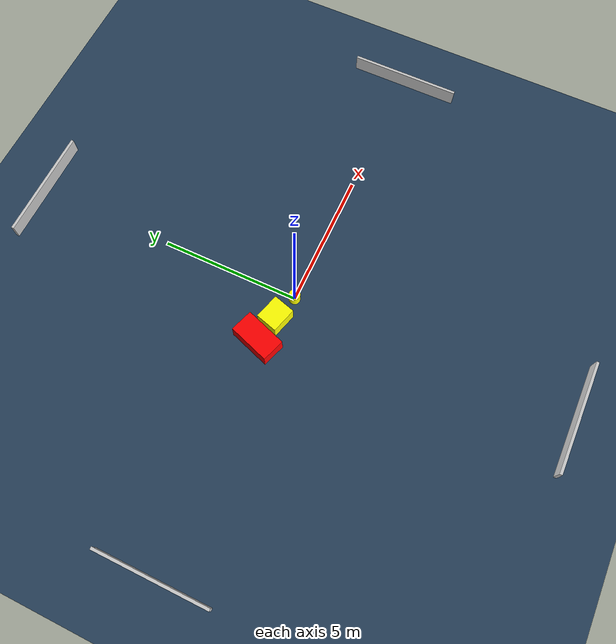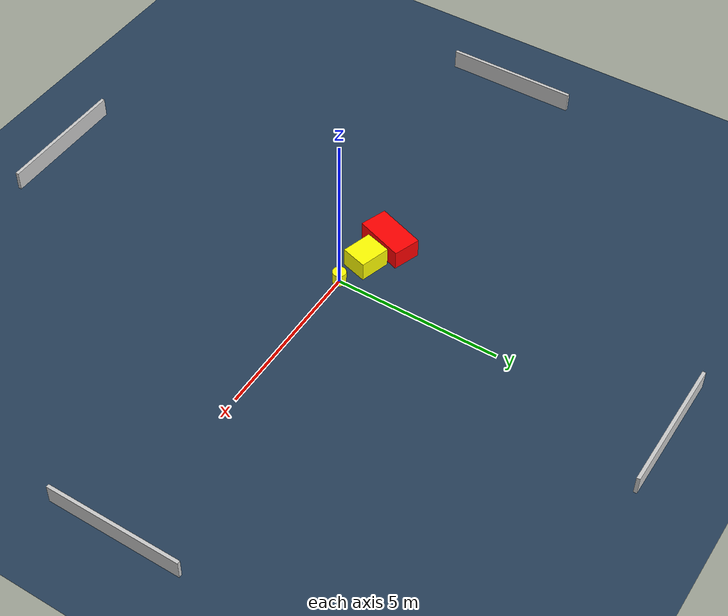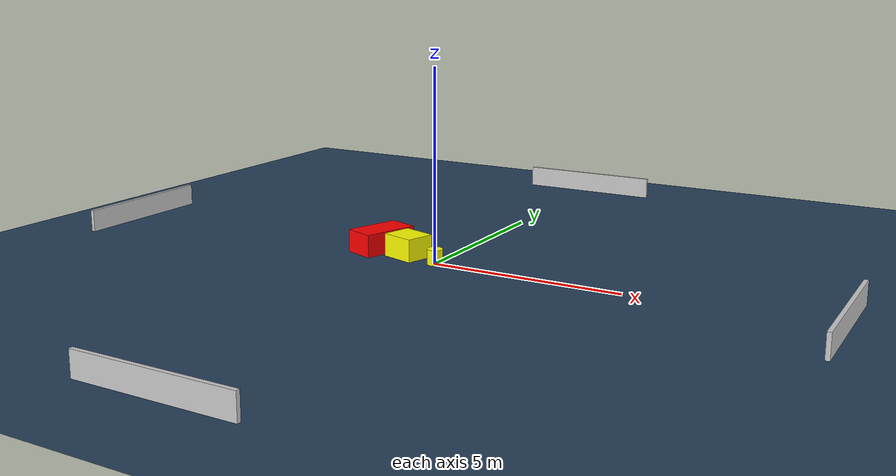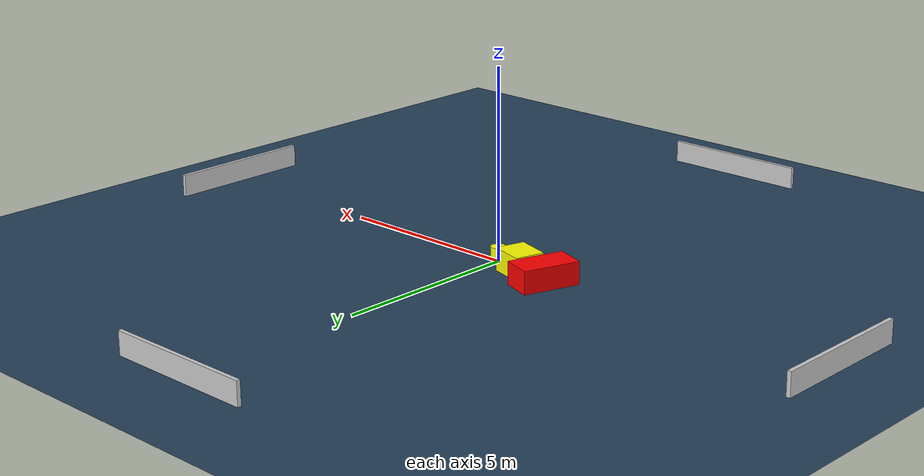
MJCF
<?xml version="1.0" ?>
<mujoco model="generated_environment">
  <option timestep="0.01" integrator="RK4" cone="elliptic"/>
  <default>
    <geom density="1"/>
  </default>
  <asset>
    <texture builtin="gradient" height="3072" name="skybox" rgb1="0.3 0.5 0.7" rgb2="0 0 0" type="skybox" width="512"/>
    <texture builtin="checker" height="300" name="groundplane" rgb1="0.2 0.3 0.4" rgb2="0.1 0.2 0.3" type="2d" width="300"/>
    <material name="groundplane" reflectance="0.2" texrepeat="5 5" texture="groundplane"/>
  </asset>
  <worldbody>
    <light dir="0 0 -1" directional="true" pos="0 0 1.5"/>
    <geom condim="3" friction="0.5 0.005 0.001" material="groundplane" name="floor" pos="0 0 0" size="0 0 0.05" type="plane"/>
    <body name="walls">
      <geom name="wall_1" condim="4" pos="-10.0 0.0 0.3" rgba="0.800000011920929 0.800000011920929 0.800000011920929 1.0" size="0.05 2.0 0.3" type="box"/>
      <geom name="wall_2" condim="4" pos="10.0 0.0 0.3" rgba="0.800000011920929 0.800000011920929 0.800000011920929 1.0" size="0.05 2.0 0.3" type="box"/>
      <geom name="wall_3" condim="4" pos="0.0 -10.0 0.3" rgba="0.800000011920929 0.800000011920929 0.800000011920929 1.0" size="2.0 0.05 0.3" type="box"/>
      <geom name="wall_4" condim="4" pos="0.0 10.0 0.3" rgba="0.800000011920929 0.800000011920929 0.800000011920929 1.0" size="2.0 0.05 0.3" type="box"/>
    </body>
    <body name="robot">
      <joint name="joint_x" type="slide" pos="0 0 0" axis="1 0 0"/>
      <joint name="joint_y" type="slide" pos="0 0 0" axis="0 1 0"/>
      <geom name="robot" type="cylinder" pos="0.0 0.0 0.2" size="0.2 0.2 0.0" mass="5.0" friction="1.0 0.005 0.0001" condim="4" rgba="1.0 1.0 0.0 1.0"/>
    </body>
    <body name="obstacle_1_movable">
      <geom name="obstacle_1_movable" condim="4" pos="-0.9558063393109288 0.26744470885214106 0.3" euler="0 0 343.8321999146754" friction="0.0 0.005 0.001" rgba="1.0 1.0 0.0 1.0" size="0.4625230942753725 0.3955437543224597 0.3" type="box" mass="0.1"/>
      <joint type="free"/>
    </body>
    <body name="obstacle_2_static">
      <geom name="obstacle_2_static" condim="4" pos="-1.9124242211310758 0.46991263535607825 0.3" euler="0 0 70.8276170573669" friction="0.0 0.005 0.001" rgba="1.0 0.0 0.0 1.0" size="0.7576843755159839 0.4159357637080264 0.3" type="box"/>
    </body>
  </worldbody>
  <actuator>
    <motor name="actuator_x" joint="joint_x" gear="1" ctrlrange="-1 1"/>
    <motor name="actuator_y" joint="joint_y" gear="1" ctrlrange="-1 1"/>
  </actuator>
</mujoco>
